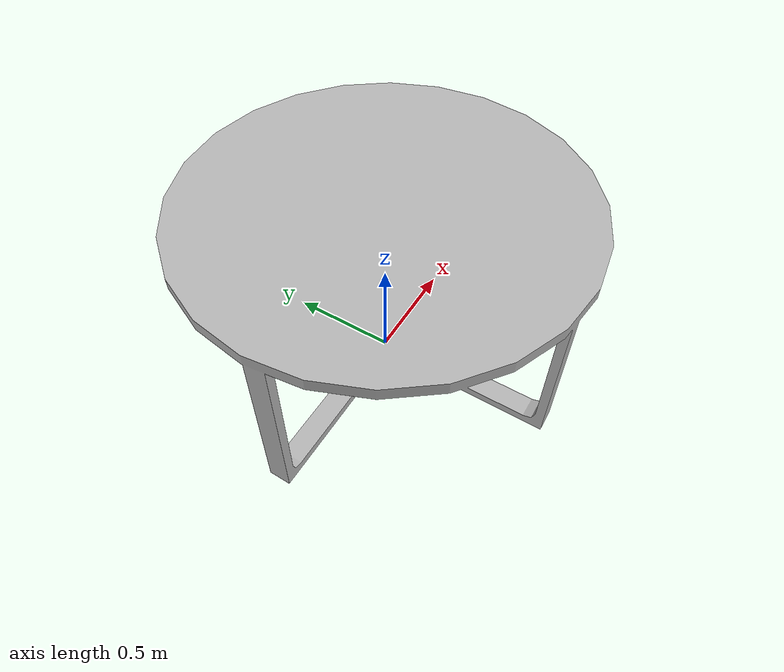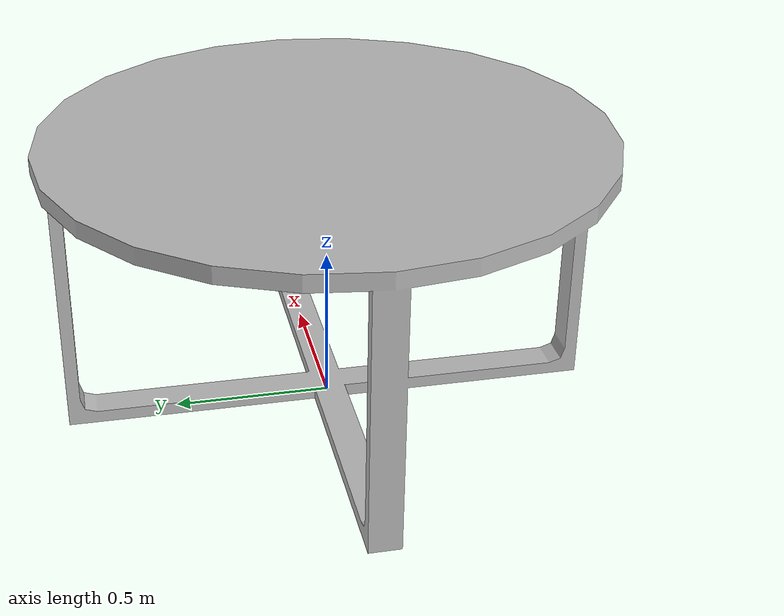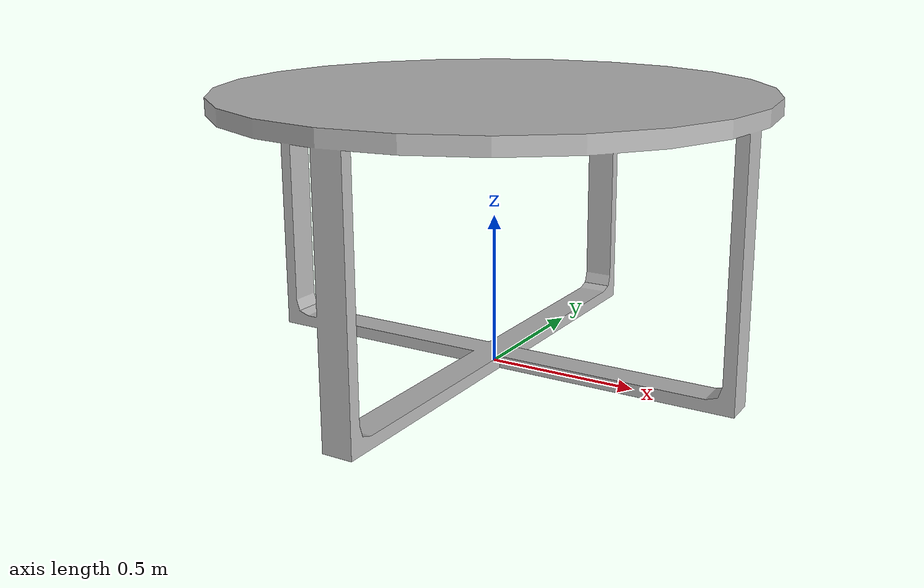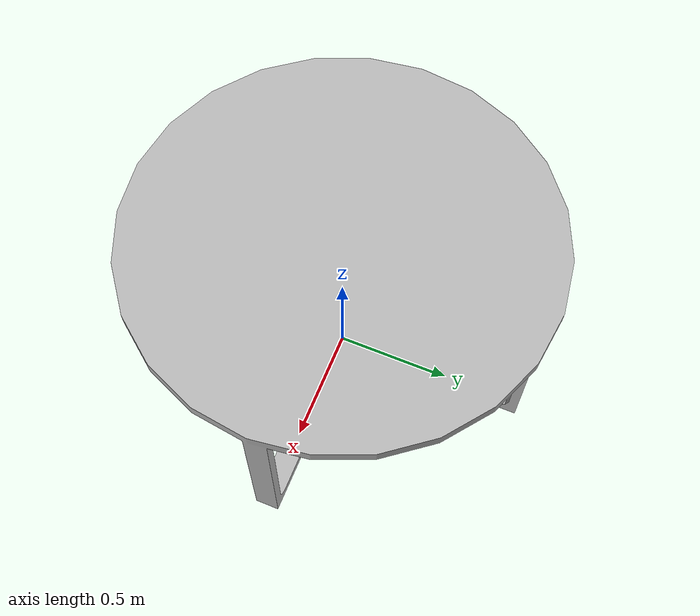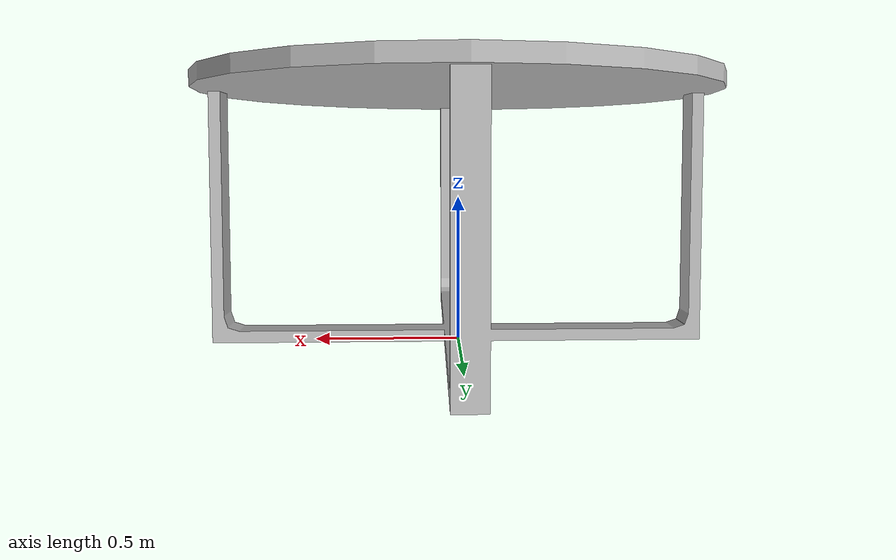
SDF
<?xml version="1.0"?>

<sdf version="1.6">
  <model name='CoffeeTable'>
    <link name="body">
      <pose>0 0 0 0 0 0</pose>

      <visual name="visual">
        <geometry>
          <mesh>
            <uri>model://CoffeeTable/meshes/CoffeeTable.obj</uri>
            <scale>0.02 0.02 0.02</scale> <!-- Increase scale -->
          </mesh>
        </geometry>
      </visual>

      <collision name="collision">
        <geometry>
          <mesh>
            <uri>model://CoffeeTable/meshes/CoffeeTable.obj</uri>
            <scale>0.02 0.02 0.02</scale> <!-- Increase scale -->
          </mesh>
        </geometry>
      </collision>

    </link>
  </model>
</sdf>
